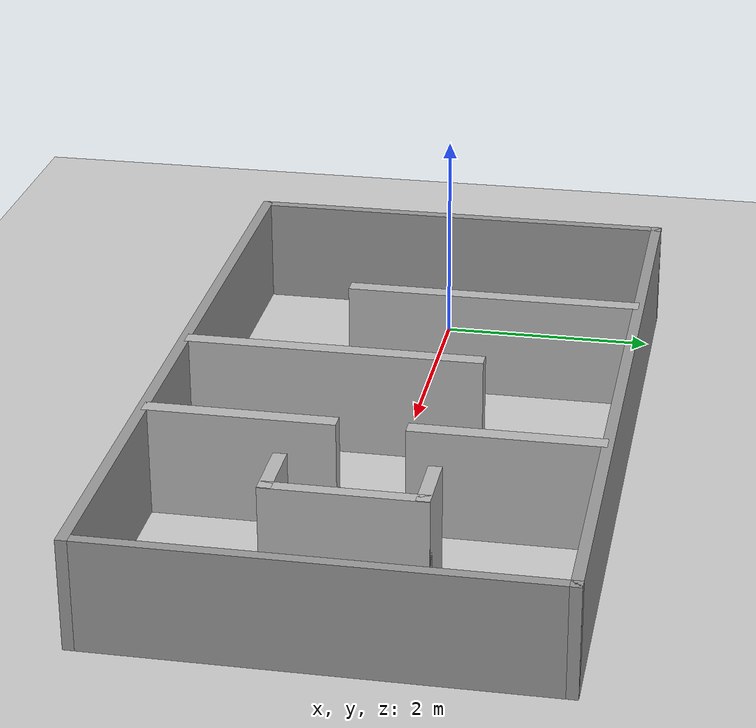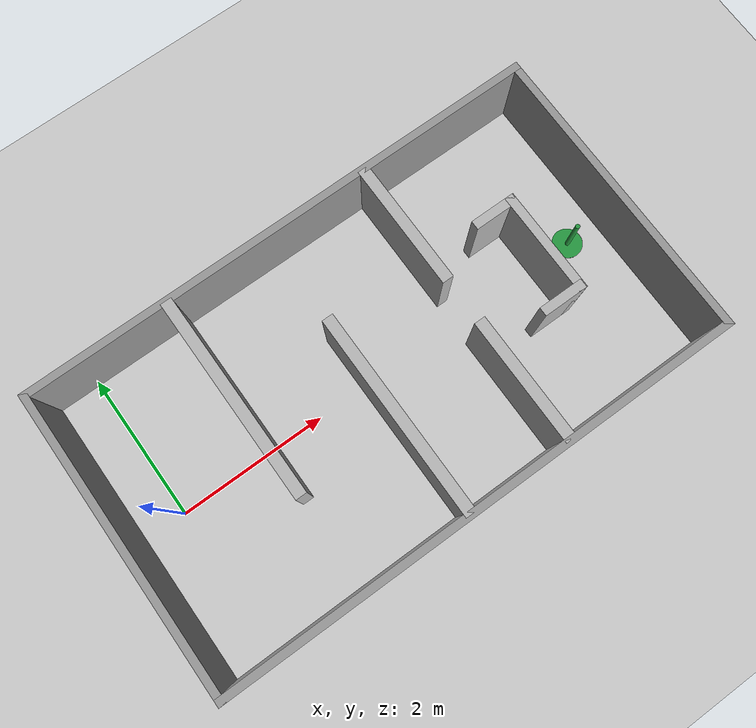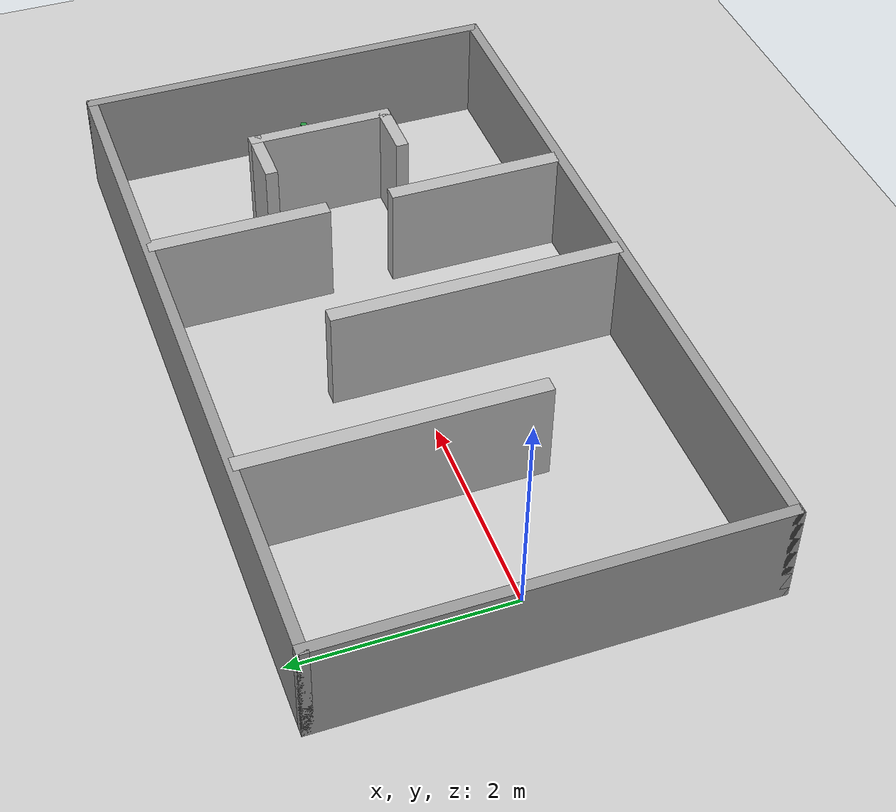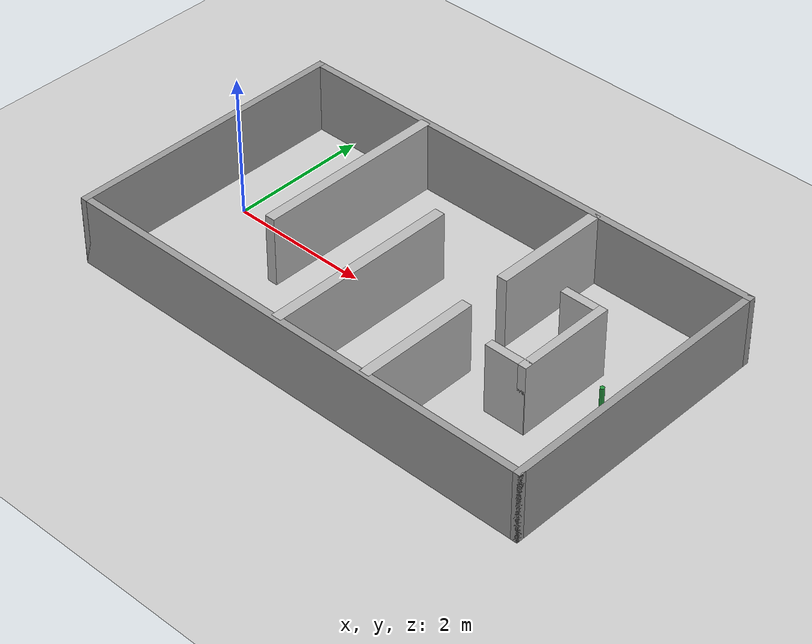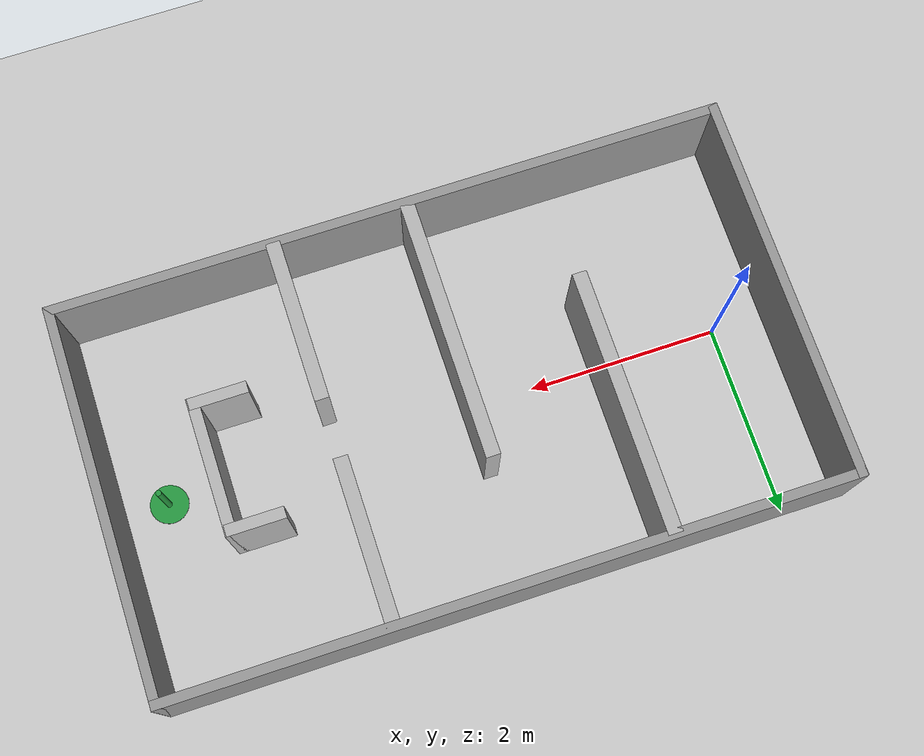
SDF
<sdf version="1.6">
 <world name="default">
  <light name="sun" type="directional">
   <pose>0 0 10 0 -0 0</pose>
   <diffuse>0.8 0.8 0.8 1</diffuse>
   <specular>0.1 0.1 0.1 1</specular>
   <attenuation>
    <range>1000</range>
    <constant>0.9</constant>
    <linear>0.01</linear>
    <quadratic>0.001</quadratic>
   </attenuation>
   <direction>-0.5 0.5 -1</direction>
  </light>
  <model name="ground_plane">
   <static>1</static>
   <link name="link">
    <collision name="collision">
     <geometry><plane><normal>0 0 1</normal><size>100 100</size></plane></geometry>
     <surface><friction><ode><mu>100</mu><mu2>50</mu2></ode></friction></surface>
    </collision>
    <visual name="visual">
     <cast_shadows>0</cast_shadows>
     <geometry><plane><normal>0 0 1</normal><size>100 100</size></plane></geometry>
     <material>
      <script><uri>file://media/materials/scripts/gazebo.material</uri><name>Gazebo/Grey</name></script>
     </material>
    </visual>
   </link>
  </model>
  <gravity>0 0 -9.8</gravity>
  <magnetic_field>6e-06 2.3e-05 -4.2e-05</magnetic_field>
  <atmosphere type="adiabatic"/>
  <physics name="default_physics" default="0" type="ode">
   <max_step_size>0.001</max_step_size>
   <real_time_factor>1</real_time_factor>
   <real_time_update_rate>1000</real_time_update_rate>
  </physics>
  <scene><ambient>0.4 0.4 0.4 1</ambient><background>0.7 0.7 0.7 1</background><shadows>1</shadows></scene>
  <spherical_coordinates>
   <surface_model>EARTH_WGS84</surface_model>
   <latitude_deg>0</latitude_deg>
   <longitude_deg>0</longitude_deg>
   <elevation>0</elevation>
   <heading_deg>0</heading_deg>
  </spherical_coordinates>
  <model name="wall_0">
   <static>1</static>
   <pose>2.9 2.0 0.5 0 0 0</pose>
   <link name="l">
    <collision name="c"><geometry><box><size>7.1 0.1 1.0</size></box></geometry></collision>
    <visual name="v">
     <geometry><box><size>7.1 0.1 1.0</size></box></geometry>
     <material><ambient>0.6 0.6 0.6 1</ambient><diffuse>0.6 0.6 0.6 1</diffuse></material>
    </visual>
   </link>
  </model>
  <model name="wall_1">
   <static>1</static>
   <pose>2.9 -2.0 0.5 0 0 0</pose>
   <link name="l">
    <collision name="c"><geometry><box><size>7.1 0.1 1.0</size></box></geometry></collision>
    <visual name="v">
     <geometry><box><size>7.1 0.1 1.0</size></box></geometry>
     <material><ambient>0.6 0.6 0.6 1</ambient><diffuse>0.6 0.6 0.6 1</diffuse></material>
    </visual>
   </link>
  </model>
  <model name="wall_2">
   <static>1</static>
   <pose>-0.6 0 0.5 0 0 0</pose>
   <link name="l">
    <collision name="c"><geometry><box><size>0.1 4.1 1.0</size></box></geometry></collision>
    <visual name="v">
     <geometry><box><size>0.1 4.1 1.0</size></box></geometry>
     <material><ambient>0.6 0.6 0.6 1</ambient><diffuse>0.6 0.6 0.6 1</diffuse></material>
    </visual>
   </link>
  </model>
  <model name="wall_3">
   <static>1</static>
   <pose>6.4 0 0.5 0 0 0</pose>
   <link name="l">
    <collision name="c"><geometry><box><size>0.1 4.1 1.0</size></box></geometry></collision>
    <visual name="v">
     <geometry><box><size>0.1 4.1 1.0</size></box></geometry>
     <material><ambient>0.6 0.6 0.6 1</ambient><diffuse>0.6 0.6 0.6 1</diffuse></material>
    </visual>
   </link>
  </model>
  <model name="obs_0">
   <static>1</static>
   <pose>1.3 0.625 0.5 0 0 0</pose>
   <link name="l">
    <collision name="c"><geometry><box><size>0.15 2.75 1.0</size></box></geometry></collision>
    <visual name="v">
     <geometry><box><size>0.15 2.75 1.0</size></box></geometry>
     <material><ambient>0.72 0.72 0.72 1</ambient><diffuse>0.72 0.72 0.72 1</diffuse></material>
    </visual>
   </link>
  </model>
  <model name="obs_1">
   <static>1</static>
   <pose>2.7 -0.625 0.5 0 0 0</pose>
   <link name="l">
    <collision name="c"><geometry><box><size>0.15 2.75 1.0</size></box></geometry></collision>
    <visual name="v">
     <geometry><box><size>0.15 2.75 1.0</size></box></geometry>
     <material><ambient>0.72 0.72 0.72 1</ambient><diffuse>0.72 0.72 0.72 1</diffuse></material>
    </visual>
   </link>
  </model>
  <model name="obs_2">
   <static>1</static>
   <pose>4.1 1.15 0.5 0 0 0</pose>
   <link name="l">
    <collision name="c"><geometry><box><size>0.15 1.7 1.0</size></box></geometry></collision>
    <visual name="v">
     <geometry><box><size>0.15 1.7 1.0</size></box></geometry>
     <material><ambient>0.72 0.72 0.72 1</ambient><diffuse>0.72 0.72 0.72 1</diffuse></material>
    </visual>
   </link>
  </model>
  <model name="obs_3">
   <static>1</static>
   <pose>4.1 -1.15 0.5 0 0 0</pose>
   <link name="l">
    <collision name="c"><geometry><box><size>0.15 1.7 1.0</size></box></geometry></collision>
    <visual name="v">
     <geometry><box><size>0.15 1.7 1.0</size></box></geometry>
     <material><ambient>0.72 0.72 0.72 1</ambient><diffuse>0.72 0.72 0.72 1</diffuse></material>
    </visual>
   </link>
  </model>
  <model name="obs_4">
   <static>1</static>
   <pose>5.3 0.0 0.5 0 0 0</pose>
   <link name="l">
    <collision name="c"><geometry><box><size>0.12 1.42 1.0</size></box></geometry></collision>
    <visual name="v">
     <geometry><box><size>0.12 1.42 1.0</size></box></geometry>
     <material><ambient>0.72 0.72 0.72 1</ambient><diffuse>0.72 0.72 0.72 1</diffuse></material>
    </visual>
   </link>
  </model>
  <model name="obs_5">
   <static>1</static>
   <pose>5.05 0.65 0.5 0 0 0</pose>
   <link name="l">
    <collision name="c"><geometry><box><size>0.6 0.12 1.0</size></box></geometry></collision>
    <visual name="v">
     <geometry><box><size>0.6 0.12 1.0</size></box></geometry>
     <material><ambient>0.72 0.72 0.72 1</ambient><diffuse>0.72 0.72 0.72 1</diffuse></material>
    </visual>
   </link>
  </model>
  <model name="obs_6">
   <static>1</static>
   <pose>5.05 -0.65 0.5 0 0 0</pose>
   <link name="l">
    <collision name="c"><geometry><box><size>0.6 0.12 1.0</size></box></geometry></collision>
    <visual name="v">
     <geometry><box><size>0.6 0.12 1.0</size></box></geometry>
     <material><ambient>0.72 0.72 0.72 1</ambient><diffuse>0.72 0.72 0.72 1</diffuse></material>
    </visual>
   </link>
  </model>
  <model name="goal_marker">
   <static>1</static>
   <pose>5.9 0.0 0 0 0 0</pose>
   <link name="l">
    <visual name="pad">
     <pose>0 0 0.005 0 0 0</pose>
     <geometry><cylinder><radius>0.2</radius><length>0.01</length></cylinder></geometry>
     <material><ambient>0.15 0.6 0.25 1</ambient><diffuse>0.15 0.6 0.25 1</diffuse></material>
    </visual>
    <visual name="pole">
     <pose>0 0 0.3 0 0 0</pose>
     <geometry><cylinder><radius>0.03</radius><length>0.6</length></cylinder></geometry>
     <material><ambient>0.15 0.6 0.25 1</ambient><diffuse>0.15 0.6 0.25 1</diffuse></material>
    </visual>
   </link>
  </model>
 </world>
</sdf>
